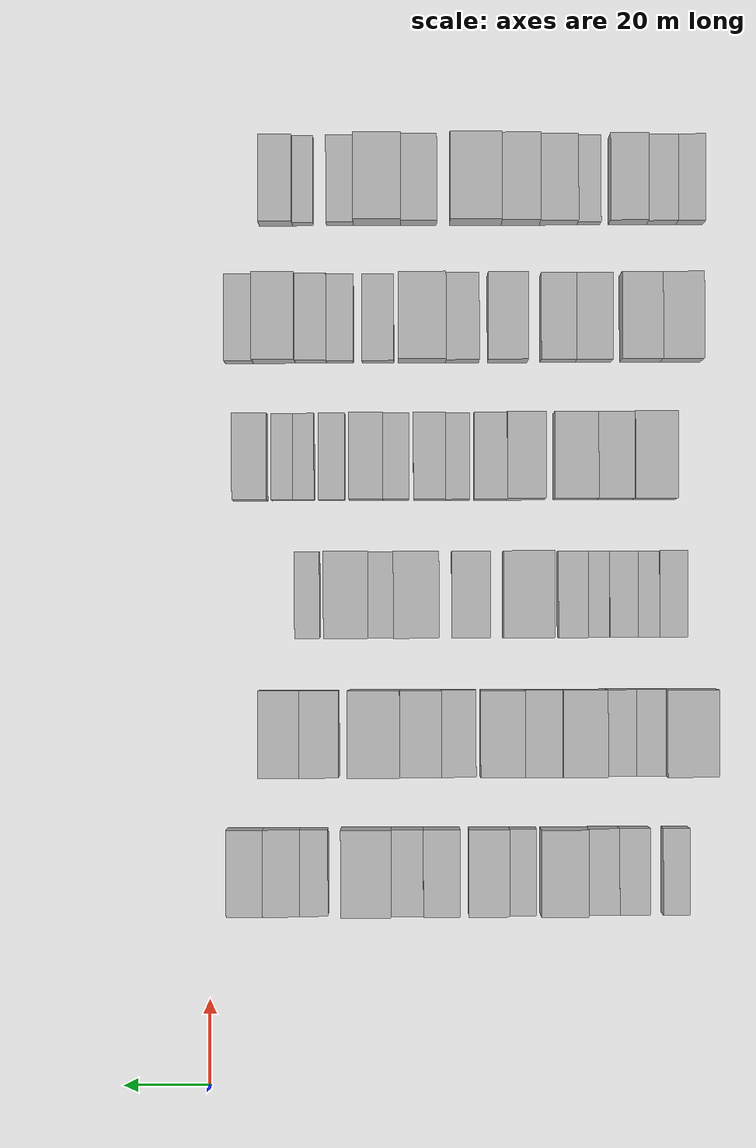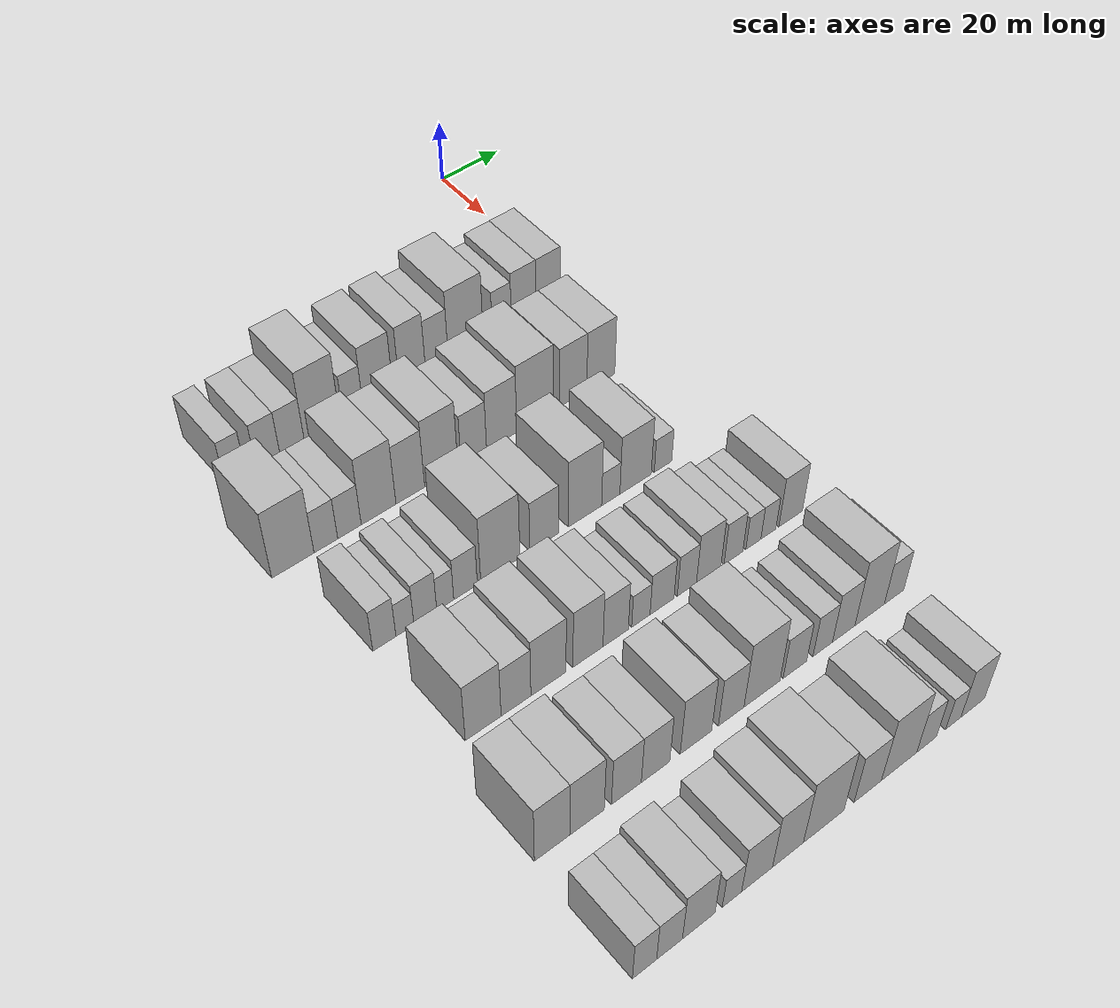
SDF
<sdf version="1.6">
 <world name="default">
  <model name="building_46">
   <static>1</static>
   <pose>50.0000 -108.0022 0 0.000000 0.000000 0.000000</pose>
   <link name="link">
    <pose>0 0 7.50 0 0 0</pose>
    <collision name="collision"><geometry><box><size>20.0000 6.1102 15.0000</size></box></geometry></collision>
    <visual name="visual">
     <cast_shadows>0</cast_shadows>
     <geometry><box><size>20.0000 6.1102 15.0000</size></box></geometry>
     <material>
      <script>
       <uri>model://HANNAS_wall/materials/scripts</uri>
       <uri>model://HANNAS_wall/materials/textures</uri>
       <name>vrc/HANNAS_wall</name>
      </script>
     </material>
    </visual>
   </link>
  </model>
  <model name="building_47">
   <static>1</static>
   <pose>50.0000 -98.4298 0 0.000000 0.000000 0.000000</pose>
   <link name="link">
    <pose>0 0 7.50 0 0 0</pose>
    <collision name="collision"><geometry><box><size>20.0000 7.0346 15.0000</size></box></geometry></collision>
    <visual name="visual">
     <cast_shadows>0</cast_shadows>
     <geometry><box><size>20.0000 7.0346 15.0000</size></box></geometry>
     <material>
      <script>
       <uri>model://HANNAS_wall/materials/scripts</uri>
       <uri>model://HANNAS_wall/materials/textures</uri>
       <name>vrc/HANNAS_wall</name>
      </script>
     </material>
    </visual>
   </link>
  </model>
  <model name="building_48">
   <static>1</static>
   <pose>50.0000 -91.2666 0 0.000000 0.000000 0.000000</pose>
   <link name="link">
    <pose>0 0 7.50 0 0 0</pose>
    <collision name="collision"><geometry><box><size>20.0000 7.2917 15.0000</size></box></geometry></collision>
    <visual name="visual">
     <cast_shadows>0</cast_shadows>
     <geometry><box><size>20.0000 7.2917 15.0000</size></box></geometry>
     <material>
      <script>
       <uri>model://HANNAS_wall/materials/scripts</uri>
       <uri>model://HANNAS_wall/materials/textures</uri>
       <name>vrc/HANNAS_wall</name>
      </script>
     </material>
    </visual>
   </link>
  </model>
  <model name="building_49">
   <static>1</static>
   <pose>50.0000 -82.1670 0 0.000000 0.000000 0.000000</pose>
   <link name="link">
    <pose>0 0 12.00 0 0 0</pose>
    <collision name="collision"><geometry><box><size>20.0000 10.9074 24.0000</size></box></geometry></collision>
    <visual name="visual">
     <cast_shadows>0</cast_shadows>
     <geometry><box><size>20.0000 10.9074 24.0000</size></box></geometry>
     <material>
      <script>
       <uri>model://HANNAS_wall/materials/scripts</uri>
       <uri>model://HANNAS_wall/materials/textures</uri>
       <name>vrc/HANNAS_wall</name>
      </script>
     </material>
    </visual>
   </link>
  </model>
  <model name="building_50">
   <static>1</static>
   <pose>50.0000 -72.6350 0 0.000000 0.000000 0.000000</pose>
   <link name="link">
    <pose>0 0 7.50 0 0 0</pose>
    <collision name="collision"><geometry><box><size>20.0000 6.1566 15.0000</size></box></geometry></collision>
    <visual name="visual">
     <cast_shadows>0</cast_shadows>
     <geometry><box><size>20.0000 6.1566 15.0000</size></box></geometry>
     <material>
      <script>
       <uri>model://HANNAS_wall/materials/scripts</uri>
       <uri>model://HANNAS_wall/materials/textures</uri>
       <name>vrc/HANNAS_wall</name>
      </script>
     </material>
    </visual>
   </link>
  </model>
  <model name="building_51">
   <static>1</static>
   <pose>50.0000 -64.8374 0 0.000000 0.000000 0.000000</pose>
   <link name="link">
    <pose>0 0 10.50 0 0 0</pose>
    <collision name="collision"><geometry><box><size>20.0000 9.4385 21.0000</size></box></geometry></collision>
    <visual name="visual">
     <cast_shadows>0</cast_shadows>
     <geometry><box><size>20.0000 9.4385 21.0000</size></box></geometry>
     <material>
      <script>
       <uri>model://HANNAS_wall/materials/scripts</uri>
       <uri>model://HANNAS_wall/materials/textures</uri>
       <name>vrc/HANNAS_wall</name>
      </script>
     </material>
    </visual>
   </link>
  </model>
  <model name="building_52">
   <static>1</static>
   <pose>50.0000 -53.8887 0 0.000000 0.000000 0.000000</pose>
   <link name="link">
    <pose>0 0 10.50 0 0 0</pose>
    <collision name="collision"><geometry><box><size>20.0000 8.4590 21.0000</size></box></geometry></collision>
    <visual name="visual">
     <cast_shadows>0</cast_shadows>
     <geometry><box><size>20.0000 8.4590 21.0000</size></box></geometry>
     <material>
      <script>
       <uri>model://HANNAS_wall/materials/scripts</uri>
       <uri>model://HANNAS_wall/materials/textures</uri>
       <name>vrc/HANNAS_wall</name>
      </script>
     </material>
    </visual>
   </link>
  </model>
  <model name="building_53">
   <static>1</static>
   <pose>50.0000 -45.9639 0 0.000000 0.000000 0.000000</pose>
   <link name="link">
    <pose>0 0 9.00 0 0 0</pose>
    <collision name="collision"><geometry><box><size>20.0000 7.3907 18.0000</size></box></geometry></collision>
    <visual name="visual">
     <cast_shadows>0</cast_shadows>
     <geometry><box><size>20.0000 7.3907 18.0000</size></box></geometry>
     <material>
      <script>
       <uri>model://HANNAS_wall/materials/scripts</uri>
       <uri>model://HANNAS_wall/materials/textures</uri>
       <name>vrc/HANNAS_wall</name>
      </script>
     </material>
    </visual>
   </link>
  </model>
  <model name="building_54">
   <static>1</static>
   <pose>50.0000 -36.4717 0 0.000000 0.000000 0.000000</pose>
   <link name="link">
    <pose>0 0 12.00 0 0 0</pose>
    <collision name="collision"><geometry><box><size>20.0000 11.5937 24.0000</size></box></geometry></collision>
    <visual name="visual">
     <cast_shadows>0</cast_shadows>
     <geometry><box><size>20.0000 11.5937 24.0000</size></box></geometry>
     <material>
      <script>
       <uri>model://HANNAS_wall/materials/scripts</uri>
       <uri>model://HANNAS_wall/materials/textures</uri>
       <name>vrc/HANNAS_wall</name>
      </script>
     </material>
    </visual>
   </link>
  </model>
  <model name="building_55">
   <static>1</static>
   <pose>50.0000 -24.4267 0 0.000000 0.000000 0.000000</pose>
   <link name="link">
    <pose>0 0 7.50 0 0 0</pose>
    <collision name="collision"><geometry><box><size>20.0000 6.4962 15.0000</size></box></geometry></collision>
    <visual name="visual">
     <cast_shadows>0</cast_shadows>
     <geometry><box><size>20.0000 6.4962 15.0000</size></box></geometry>
     <material>
      <script>
       <uri>model://HANNAS_wall/materials/scripts</uri>
       <uri>model://HANNAS_wall/materials/textures</uri>
       <name>vrc/HANNAS_wall</name>
      </script>
     </material>
    </visual>
   </link>
  </model>
  <model name="building_56">
   <static>1</static>
   <pose>50.0000 -16.9407 0 0.000000 0.000000 0.000000</pose>
   <link name="link">
    <pose>0 0 9.00 0 0 0</pose>
    <collision name="collision"><geometry><box><size>20.0000 8.4759 18.0000</size></box></geometry></collision>
    <visual name="visual">
     <cast_shadows>0</cast_shadows>
     <geometry><box><size>20.0000 8.4759 18.0000</size></box></geometry>
     <material>
      <script>
       <uri>model://HANNAS_wall/materials/scripts</uri>
       <uri>model://HANNAS_wall/materials/textures</uri>
       <name>vrc/HANNAS_wall</name>
      </script>
     </material>
    </visual>
   </link>
  </model>
  <model name="building_57">
   <static>1</static>
   <pose>50.0000 -8.5096 0 0.000000 0.000000 0.000000</pose>
   <link name="link">
    <pose>0 0 9.00 0 0 0</pose>
    <collision name="collision"><geometry><box><size>20.0000 8.3861 18.0000</size></box></geometry></collision>
    <visual name="visual">
     <cast_shadows>0</cast_shadows>
     <geometry><box><size>20.0000 8.3861 18.0000</size></box></geometry>
     <material>
      <script>
       <uri>model://HANNAS_wall/materials/scripts</uri>
       <uri>model://HANNAS_wall/materials/textures</uri>
       <name>vrc/HANNAS_wall</name>
      </script>
     </material>
    </visual>
   </link>
  </model>
  <model name="building_167">
   <static>1</static>
   <pose>82.0000 -111.6366 0 0.000000 0.000000 0.000000</pose>
   <link name="link">
    <pose>0 0 12.00 0 0 0</pose>
    <collision name="collision"><geometry><box><size>20.0000 11.8998 24.0000</size></box></geometry></collision>
    <visual name="visual">
     <cast_shadows>0</cast_shadows>
     <geometry><box><size>20.0000 11.8998 24.0000</size></box></geometry>
     <material>
      <script>
       <uri>model://HANNAS_wall/materials/scripts</uri>
       <uri>model://HANNAS_wall/materials/textures</uri>
       <name>vrc/HANNAS_wall</name>
      </script>
     </material>
    </visual>
   </link>
  </model>
  <model name="building_168">
   <static>1</static>
   <pose>82.0000 -102.2812 0 0.000000 0.000000 0.000000</pose>
   <link name="link">
    <pose>0 0 7.50 0 0 0</pose>
    <collision name="collision"><geometry><box><size>20.0000 6.8108 15.0000</size></box></geometry></collision>
    <visual name="visual">
     <cast_shadows>0</cast_shadows>
     <geometry><box><size>20.0000 6.8108 15.0000</size></box></geometry>
     <material>
      <script>
       <uri>model://HANNAS_wall/materials/scripts</uri>
       <uri>model://HANNAS_wall/materials/textures</uri>
       <name>vrc/HANNAS_wall</name>
      </script>
     </material>
    </visual>
   </link>
  </model>
  <model name="building_169">
   <static>1</static>
   <pose>82.0000 -95.4636 0 0.000000 0.000000 0.000000</pose>
   <link name="link">
    <pose>0 0 7.50 0 0 0</pose>
    <collision name="collision"><geometry><box><size>20.0000 6.8244 15.0000</size></box></geometry></collision>
    <visual name="visual">
     <cast_shadows>0</cast_shadows>
     <geometry><box><size>20.0000 6.8244 15.0000</size></box></geometry>
     <material>
      <script>
       <uri>model://HANNAS_wall/materials/scripts</uri>
       <uri>model://HANNAS_wall/materials/textures</uri>
       <name>vrc/HANNAS_wall</name>
      </script>
     </material>
    </visual>
   </link>
  </model>
  <model name="building_170">
   <static>1</static>
   <pose>82.0000 -86.9094 0 0.000000 0.000000 0.000000</pose>
   <link name="link">
    <pose>0 0 12.00 0 0 0</pose>
    <collision name="collision"><geometry><box><size>20.0000 10.2842 24.0000</size></box></geometry></collision>
    <visual name="visual">
     <cast_shadows>0</cast_shadows>
     <geometry><box><size>20.0000 10.2842 24.0000</size></box></geometry>
     <material>
      <script>
       <uri>model://HANNAS_wall/materials/scripts</uri>
       <uri>model://HANNAS_wall/materials/textures</uri>
       <name>vrc/HANNAS_wall</name>
      </script>
     </material>
    </visual>
   </link>
  </model>
  <model name="building_171">
   <static>1</static>
   <pose>82.0000 -77.4277 0 0.000000 0.000000 0.000000</pose>
   <link name="link">
    <pose>0 0 10.50 0 0 0</pose>
    <collision name="collision"><geometry><box><size>20.0000 8.6792 21.0000</size></box></geometry></collision>
    <visual name="visual">
     <cast_shadows>0</cast_shadows>
     <geometry><box><size>20.0000 8.6792 21.0000</size></box></geometry>
     <material>
      <script>
       <uri>model://HANNAS_wall/materials/scripts</uri>
       <uri>model://HANNAS_wall/materials/textures</uri>
       <name>vrc/HANNAS_wall</name>
      </script>
     </material>
    </visual>
   </link>
  </model>
  <model name="building_172">
   <static>1</static>
   <pose>82.0000 -67.9847 0 0.000000 0.000000 0.000000</pose>
   <link name="link">
    <pose>0 0 12.00 0 0 0</pose>
    <collision name="collision"><geometry><box><size>20.0000 10.2068 24.0000</size></box></geometry></collision>
    <visual name="visual">
     <cast_shadows>0</cast_shadows>
     <geometry><box><size>20.0000 10.2068 24.0000</size></box></geometry>
     <material>
      <script>
       <uri>model://HANNAS_wall/materials/scripts</uri>
       <uri>model://HANNAS_wall/materials/textures</uri>
       <name>vrc/HANNAS_wall</name>
      </script>
     </material>
    </visual>
   </link>
  </model>
  <model name="building_173">
   <static>1</static>
   <pose>82.0000 -57.8930 0 0.000000 0.000000 0.000000</pose>
   <link name="link">
    <pose>0 0 9.00 0 0 0</pose>
    <collision name="collision"><geometry><box><size>20.0000 7.9767 18.0000</size></box></geometry></collision>
    <visual name="visual">
     <cast_shadows>0</cast_shadows>
     <geometry><box><size>20.0000 7.9767 18.0000</size></box></geometry>
     <material>
      <script>
       <uri>model://HANNAS_wall/materials/scripts</uri>
       <uri>model://HANNAS_wall/materials/textures</uri>
       <name>vrc/HANNAS_wall</name>
      </script>
     </material>
    </visual>
   </link>
  </model>
  <model name="building_174">
   <static>1</static>
   <pose>82.0000 -49.0918 0 0.000000 0.000000 0.000000</pose>
   <link name="link">
    <pose>0 0 10.50 0 0 0</pose>
    <collision name="collision"><geometry><box><size>20.0000 9.6255 21.0000</size></box></geometry></collision>
    <visual name="visual">
     <cast_shadows>0</cast_shadows>
     <geometry><box><size>20.0000 9.6255 21.0000</size></box></geometry>
     <material>
      <script>
       <uri>model://HANNAS_wall/materials/scripts</uri>
       <uri>model://HANNAS_wall/materials/textures</uri>
       <name>vrc/HANNAS_wall</name>
      </script>
     </material>
    </visual>
   </link>
  </model>
  <model name="building_175">
   <static>1</static>
   <pose>82.0000 -38.2819 0 0.000000 0.000000 0.000000</pose>
   <link name="link">
    <pose>0 0 12.00 0 0 0</pose>
    <collision name="collision"><geometry><box><size>20.0000 11.9944 24.0000</size></box></geometry></collision>
    <visual name="visual">
     <cast_shadows>0</cast_shadows>
     <geometry><box><size>20.0000 11.9944 24.0000</size></box></geometry>
     <material>
      <script>
       <uri>model://HANNAS_wall/materials/scripts</uri>
       <uri>model://HANNAS_wall/materials/textures</uri>
       <name>vrc/HANNAS_wall</name>
      </script>
     </material>
    </visual>
   </link>
  </model>
  <model name="building_176">
   <static>1</static>
   <pose>82.0000 -25.7535 0 0.000000 0.000000 0.000000</pose>
   <link name="link">
    <pose>0 0 10.50 0 0 0</pose>
    <collision name="collision"><geometry><box><size>20.0000 9.0624 21.0000</size></box></geometry></collision>
    <visual name="visual">
     <cast_shadows>0</cast_shadows>
     <geometry><box><size>20.0000 9.0624 21.0000</size></box></geometry>
     <material>
      <script>
       <uri>model://HANNAS_wall/materials/scripts</uri>
       <uri>model://HANNAS_wall/materials/textures</uri>
       <name>vrc/HANNAS_wall</name>
      </script>
     </material>
    </visual>
   </link>
  </model>
  <model name="building_177">
   <static>1</static>
   <pose>82.0000 -16.4887 0 0.000000 0.000000 0.000000</pose>
   <link name="link">
    <pose>0 0 10.50 0 0 0</pose>
    <collision name="collision"><geometry><box><size>20.0000 9.4673 21.0000</size></box></geometry></collision>
    <visual name="visual">
     <cast_shadows>0</cast_shadows>
     <geometry><box><size>20.0000 9.4673 21.0000</size></box></geometry>
     <material>
      <script>
       <uri>model://HANNAS_wall/materials/scripts</uri>
       <uri>model://HANNAS_wall/materials/textures</uri>
       <name>vrc/HANNAS_wall</name>
      </script>
     </material>
    </visual>
   </link>
  </model>
  <model name="building_286">
   <static>1</static>
   <pose>114.0000 -107.6057 0 0.000000 0.000000 0.000000</pose>
   <link name="link">
    <pose>0 0 7.50 0 0 0</pose>
    <collision name="collision"><geometry><box><size>20.0000 6.4363 15.0000</size></box></geometry></collision>
    <visual name="visual">
     <cast_shadows>0</cast_shadows>
     <geometry><box><size>20.0000 6.4363 15.0000</size></box></geometry>
     <material>
      <script>
       <uri>model://HANNAS_wall/materials/scripts</uri>
       <uri>model://HANNAS_wall/materials/textures</uri>
       <name>vrc/HANNAS_wall</name>
      </script>
     </material>
    </visual>
   </link>
  </model>
  <model name="building_287">
   <static>1</static>
   <pose>114.0000 -101.8410 0 0.000000 0.000000 0.000000</pose>
   <link name="link">
    <pose>0 0 6.00 0 0 0</pose>
    <collision name="collision"><geometry><box><size>20.0000 5.0933 12.0000</size></box></geometry></collision>
    <visual name="visual">
     <cast_shadows>0</cast_shadows>
     <geometry><box><size>20.0000 5.0933 12.0000</size></box></geometry>
     <material>
      <script>
       <uri>model://HANNAS_wall/materials/scripts</uri>
       <uri>model://HANNAS_wall/materials/textures</uri>
       <name>vrc/HANNAS_wall</name>
      </script>
     </material>
    </visual>
   </link>
  </model>
  <model name="building_288">
   <static>1</static>
   <pose>114.0000 -96.0455 0 0.000000 0.000000 0.000000</pose>
   <link name="link">
    <pose>0 0 7.50 0 0 0</pose>
    <collision name="collision"><geometry><box><size>20.0000 6.4976 15.0000</size></box></geometry></collision>
    <visual name="visual">
     <cast_shadows>0</cast_shadows>
     <geometry><box><size>20.0000 6.4976 15.0000</size></box></geometry>
     <material>
      <script>
       <uri>model://HANNAS_wall/materials/scripts</uri>
       <uri>model://HANNAS_wall/materials/textures</uri>
       <name>vrc/HANNAS_wall</name>
      </script>
     </material>
    </visual>
   </link>
  </model>
  <model name="building_289">
   <static>1</static>
   <pose>114.0000 -90.3392 0 0.000000 0.000000 0.000000</pose>
   <link name="link">
    <pose>0 0 6.00 0 0 0</pose>
    <collision name="collision"><geometry><box><size>20.0000 4.9150 12.0000</size></box></geometry></collision>
    <visual name="visual">
     <cast_shadows>0</cast_shadows>
     <geometry><box><size>20.0000 4.9150 12.0000</size></box></geometry>
     <material>
      <script>
       <uri>model://HANNAS_wall/materials/scripts</uri>
       <uri>model://HANNAS_wall/materials/textures</uri>
       <name>vrc/HANNAS_wall</name>
      </script>
     </material>
    </visual>
   </link>
  </model>
  <model name="building_290">
   <static>1</static>
   <pose>114.0000 -84.4362 0 0.000000 0.000000 0.000000</pose>
   <link name="link">
    <pose>0 0 7.50 0 0 0</pose>
    <collision name="collision"><geometry><box><size>20.0000 6.8911 15.0000</size></box></geometry></collision>
    <visual name="visual">
     <cast_shadows>0</cast_shadows>
     <geometry><box><size>20.0000 6.8911 15.0000</size></box></geometry>
     <material>
      <script>
       <uri>model://HANNAS_wall/materials/scripts</uri>
       <uri>model://HANNAS_wall/materials/textures</uri>
       <name>vrc/HANNAS_wall</name>
      </script>
     </material>
    </visual>
   </link>
  </model>
  <model name="building_291">
   <static>1</static>
   <pose>114.0000 -74.1368 0 0.000000 0.000000 0.000000</pose>
   <link name="link">
    <pose>0 0 12.00 0 0 0</pose>
    <collision name="collision"><geometry><box><size>20.0000 11.7077 24.0000</size></box></geometry></collision>
    <visual name="visual">
     <cast_shadows>0</cast_shadows>
     <geometry><box><size>20.0000 11.7077 24.0000</size></box></geometry>
     <material>
      <script>
       <uri>model://HANNAS_wall/materials/scripts</uri>
       <uri>model://HANNAS_wall/materials/textures</uri>
       <name>vrc/HANNAS_wall</name>
      </script>
     </material>
    </visual>
   </link>
  </model>
  <model name="building_292">
   <static>1</static>
   <pose>114.0000 -60.8588 0 0.000000 0.000000 0.000000</pose>
   <link name="link">
    <pose>0 0 9.00 0 0 0</pose>
    <collision name="collision"><geometry><box><size>20.0000 8.8482 18.0000</size></box></geometry></collision>
    <visual name="visual">
     <cast_shadows>0</cast_shadows>
     <geometry><box><size>20.0000 8.8482 18.0000</size></box></geometry>
     <material>
      <script>
       <uri>model://HANNAS_wall/materials/scripts</uri>
       <uri>model://HANNAS_wall/materials/textures</uri>
       <name>vrc/HANNAS_wall</name>
      </script>
     </material>
    </visual>
   </link>
  </model>
  <model name="building_293">
   <static>1</static>
   <pose>114.0000 -48.1903 0 0.000000 0.000000 0.000000</pose>
   <link name="link">
    <pose>0 0 12.00 0 0 0</pose>
    <collision name="collision"><geometry><box><size>20.0000 10.4889 24.0000</size></box></geometry></collision>
    <visual name="visual">
     <cast_shadows>0</cast_shadows>
     <geometry><box><size>20.0000 10.4889 24.0000</size></box></geometry>
     <material>
      <script>
       <uri>model://HANNAS_wall/materials/scripts</uri>
       <uri>model://HANNAS_wall/materials/textures</uri>
       <name>vrc/HANNAS_wall</name>
      </script>
     </material>
    </visual>
   </link>
  </model>
  <model name="building_294">
   <static>1</static>
   <pose>114.0000 -40.0156 0 0.000000 0.000000 0.000000</pose>
   <link name="link">
    <pose>0 0 6.00 0 0 0</pose>
    <collision name="collision"><geometry><box><size>20.0000 5.8604 12.0000</size></box></geometry></collision>
    <visual name="visual">
     <cast_shadows>0</cast_shadows>
     <geometry><box><size>20.0000 5.8604 12.0000</size></box></geometry>
     <material>
      <script>
       <uri>model://HANNAS_wall/materials/scripts</uri>
       <uri>model://HANNAS_wall/materials/textures</uri>
       <name>vrc/HANNAS_wall</name>
      </script>
     </material>
    </visual>
   </link>
  </model>
  <model name="building_295">
   <static>1</static>
   <pose>114.0000 -31.9829 0 0.000000 0.000000 0.000000</pose>
   <link name="link">
    <pose>0 0 10.50 0 0 0</pose>
    <collision name="collision"><geometry><box><size>20.0000 10.2049 21.0000</size></box></geometry></collision>
    <visual name="visual">
     <cast_shadows>0</cast_shadows>
     <geometry><box><size>20.0000 10.2049 21.0000</size></box></geometry>
     <material>
      <script>
       <uri>model://HANNAS_wall/materials/scripts</uri>
       <uri>model://HANNAS_wall/materials/textures</uri>
       <name>vrc/HANNAS_wall</name>
      </script>
     </material>
    </visual>
   </link>
  </model>
  <model name="building_296">
   <static>1</static>
   <pose>114.0000 -22.9929 0 0.000000 0.000000 0.000000</pose>
   <link name="link">
    <pose>0 0 6.00 0 0 0</pose>
    <collision name="collision"><geometry><box><size>20.0000 5.7751 12.0000</size></box></geometry></collision>
    <visual name="visual">
     <cast_shadows>0</cast_shadows>
     <geometry><box><size>20.0000 5.7751 12.0000</size></box></geometry>
     <material>
      <script>
       <uri>model://HANNAS_wall/materials/scripts</uri>
       <uri>model://HANNAS_wall/materials/textures</uri>
       <name>vrc/HANNAS_wall</name>
      </script>
     </material>
    </visual>
   </link>
  </model>
  <model name="building_402">
   <static>1</static>
   <pose>146.0000 -103.5425 0 0.000000 0.000000 0.000000</pose>
   <link name="link">
    <pose>0 0 10.50 0 0 0</pose>
    <collision name="collision"><geometry><box><size>20.0000 9.8939 21.0000</size></box></geometry></collision>
    <visual name="visual">
     <cast_shadows>0</cast_shadows>
     <geometry><box><size>20.0000 9.8939 21.0000</size></box></geometry>
     <material>
      <script>
       <uri>model://HANNAS_wall/materials/scripts</uri>
       <uri>model://HANNAS_wall/materials/textures</uri>
       <name>vrc/HANNAS_wall</name>
      </script>
     </material>
    </visual>
   </link>
  </model>
  <model name="building_403">
   <static>1</static>
   <pose>146.0000 -94.3997 0 0.000000 0.000000 0.000000</pose>
   <link name="link">
    <pose>0 0 9.00 0 0 0</pose>
    <collision name="collision"><geometry><box><size>20.0000 8.3918 18.0000</size></box></geometry></collision>
    <visual name="visual">
     <cast_shadows>0</cast_shadows>
     <geometry><box><size>20.0000 8.3918 18.0000</size></box></geometry>
     <material>
      <script>
       <uri>model://HANNAS_wall/materials/scripts</uri>
       <uri>model://HANNAS_wall/materials/textures</uri>
       <name>vrc/HANNAS_wall</name>
      </script>
     </material>
    </visual>
   </link>
  </model>
  <model name="building_404">
   <static>1</static>
   <pose>146.0000 -85.1690 0 0.000000 0.000000 0.000000</pose>
   <link name="link">
    <pose>0 0 10.50 0 0 0</pose>
    <collision name="collision"><geometry><box><size>20.0000 10.0696 21.0000</size></box></geometry></collision>
    <visual name="visual">
     <cast_shadows>0</cast_shadows>
     <geometry><box><size>20.0000 10.0696 21.0000</size></box></geometry>
     <material>
      <script>
       <uri>model://HANNAS_wall/materials/scripts</uri>
       <uri>model://HANNAS_wall/materials/textures</uri>
       <name>vrc/HANNAS_wall</name>
      </script>
     </material>
    </visual>
   </link>
  </model>
  <model name="building_405">
   <static>1</static>
   <pose>146.0000 -73.6948 0 0.000000 0.000000 0.000000</pose>
   <link name="link">
    <pose>0 0 10.50 0 0 0</pose>
    <collision name="collision"><geometry><box><size>20.0000 8.8788 21.0000</size></box></geometry></collision>
    <visual name="visual">
     <cast_shadows>0</cast_shadows>
     <geometry><box><size>20.0000 8.8788 21.0000</size></box></geometry>
     <material>
      <script>
       <uri>model://HANNAS_wall/materials/scripts</uri>
       <uri>model://HANNAS_wall/materials/textures</uri>
       <name>vrc/HANNAS_wall</name>
      </script>
     </material>
    </visual>
   </link>
  </model>
  <model name="building_406">
   <static>1</static>
   <pose>146.0000 -65.4591 0 0.000000 0.000000 0.000000</pose>
   <link name="link">
    <pose>0 0 9.00 0 0 0</pose>
    <collision name="collision"><geometry><box><size>20.0000 7.5925 18.0000</size></box></geometry></collision>
    <visual name="visual">
     <cast_shadows>0</cast_shadows>
     <geometry><box><size>20.0000 7.5925 18.0000</size></box></geometry>
     <material>
      <script>
       <uri>model://HANNAS_wall/materials/scripts</uri>
       <uri>model://HANNAS_wall/materials/textures</uri>
       <name>vrc/HANNAS_wall</name>
      </script>
     </material>
    </visual>
   </link>
  </model>
  <model name="building_407">
   <static>1</static>
   <pose>146.0000 -57.8556 0 0.000000 0.000000 0.000000</pose>
   <link name="link">
    <pose>0 0 6.00 0 0 0</pose>
    <collision name="collision"><geometry><box><size>20.0000 5.6147 12.0000</size></box></geometry></collision>
    <visual name="visual">
     <cast_shadows>0</cast_shadows>
     <geometry><box><size>20.0000 5.6147 12.0000</size></box></geometry>
     <material>
      <script>
       <uri>model://HANNAS_wall/materials/scripts</uri>
       <uri>model://HANNAS_wall/materials/textures</uri>
       <name>vrc/HANNAS_wall</name>
      </script>
     </material>
    </visual>
   </link>
  </model>
  <model name="building_408">
   <static>1</static>
   <pose>146.0000 -51.3477 0 0.000000 0.000000 0.000000</pose>
   <link name="link">
    <pose>0 0 7.50 0 0 0</pose>
    <collision name="collision"><geometry><box><size>20.0000 7.4011 15.0000</size></box></geometry></collision>
    <visual name="visual">
     <cast_shadows>0</cast_shadows>
     <geometry><box><size>20.0000 7.4011 15.0000</size></box></geometry>
     <material>
      <script>
       <uri>model://HANNAS_wall/materials/scripts</uri>
       <uri>model://HANNAS_wall/materials/textures</uri>
       <name>vrc/HANNAS_wall</name>
      </script>
     </material>
    </visual>
   </link>
  </model>
  <model name="building_409">
   <static>1</static>
   <pose>146.0000 -43.6262 0 0.000000 0.000000 0.000000</pose>
   <link name="link">
    <pose>0 0 7.50 0 0 0</pose>
    <collision name="collision"><geometry><box><size>20.0000 6.0419 15.0000</size></box></geometry></collision>
    <visual name="visual">
     <cast_shadows>0</cast_shadows>
     <geometry><box><size>20.0000 6.0419 15.0000</size></box></geometry>
     <material>
      <script>
       <uri>model://HANNAS_wall/materials/scripts</uri>
       <uri>model://HANNAS_wall/materials/textures</uri>
       <name>vrc/HANNAS_wall</name>
      </script>
     </material>
    </visual>
   </link>
  </model>
  <model name="building_410">
   <static>1</static>
   <pose>146.0000 -36.6966 0 0.000000 0.000000 0.000000</pose>
   <link name="link">
    <pose>0 0 9.00 0 0 0</pose>
    <collision name="collision"><geometry><box><size>20.0000 7.8173 18.0000</size></box></geometry></collision>
    <visual name="visual">
     <cast_shadows>0</cast_shadows>
     <geometry><box><size>20.0000 7.8173 18.0000</size></box></geometry>
     <material>
      <script>
       <uri>model://HANNAS_wall/materials/scripts</uri>
       <uri>model://HANNAS_wall/materials/textures</uri>
       <name>vrc/HANNAS_wall</name>
      </script>
     </material>
    </visual>
   </link>
  </model>
  <model name="building_411">
   <static>1</static>
   <pose>146.0000 -28.7443 0 0.000000 0.000000 0.000000</pose>
   <link name="link">
    <pose>0 0 7.50 0 0 0</pose>
    <collision name="collision"><geometry><box><size>20.0000 6.0872 15.0000</size></box></geometry></collision>
    <visual name="visual">
     <cast_shadows>0</cast_shadows>
     <geometry><box><size>20.0000 6.0872 15.0000</size></box></geometry>
     <material>
      <script>
       <uri>model://HANNAS_wall/materials/scripts</uri>
       <uri>model://HANNAS_wall/materials/textures</uri>
       <name>vrc/HANNAS_wall</name>
      </script>
     </material>
    </visual>
   </link>
  </model>
  <model name="building_412">
   <static>1</static>
   <pose>146.0000 -22.2342 0 0.000000 0.000000 0.000000</pose>
   <link name="link">
    <pose>0 0 6.00 0 0 0</pose>
    <collision name="collision"><geometry><box><size>20.0000 4.9331 12.0000</size></box></geometry></collision>
    <visual name="visual">
     <cast_shadows>0</cast_shadows>
     <geometry><box><size>20.0000 4.9331 12.0000</size></box></geometry>
     <material>
      <script>
       <uri>model://HANNAS_wall/materials/scripts</uri>
       <uri>model://HANNAS_wall/materials/textures</uri>
       <name>vrc/HANNAS_wall</name>
      </script>
     </material>
    </visual>
   </link>
  </model>
  <model name="building_413">
   <static>1</static>
   <pose>146.0000 -17.2901 0 0.000000 0.000000 0.000000</pose>
   <link name="link">
    <pose>0 0 6.00 0 0 0</pose>
    <collision name="collision"><geometry><box><size>20.0000 4.9551 12.0000</size></box></geometry></collision>
    <visual name="visual">
     <cast_shadows>0</cast_shadows>
     <geometry><box><size>20.0000 4.9551 12.0000</size></box></geometry>
     <material>
      <script>
       <uri>model://HANNAS_wall/materials/scripts</uri>
       <uri>model://HANNAS_wall/materials/textures</uri>
       <name>vrc/HANNAS_wall</name>
      </script>
     </material>
    </visual>
   </link>
  </model>
  <model name="building_414">
   <static>1</static>
   <pose>146.0000 -9.8416 0 0.000000 0.000000 0.000000</pose>
   <link name="link">
    <pose>0 0 9.00 0 0 0</pose>
    <collision name="collision"><geometry><box><size>20.0000 7.9417 18.0000</size></box></geometry></collision>
    <visual name="visual">
     <cast_shadows>0</cast_shadows>
     <geometry><box><size>20.0000 7.9417 18.0000</size></box></geometry>
     <material>
      <script>
       <uri>model://HANNAS_wall/materials/scripts</uri>
       <uri>model://HANNAS_wall/materials/textures</uri>
       <name>vrc/HANNAS_wall</name>
      </script>
     </material>
    </visual>
   </link>
  </model>
  <model name="building_523">
   <static>1</static>
   <pose>178.0000 -109.8180 0 0.000000 0.000000 0.000000</pose>
   <link name="link">
    <pose>0 0 10.50 0 0 0</pose>
    <collision name="collision"><geometry><box><size>20.0000 9.4437 21.0000</size></box></geometry></collision>
    <visual name="visual">
     <cast_shadows>0</cast_shadows>
     <geometry><box><size>20.0000 9.4437 21.0000</size></box></geometry>
     <material>
      <script>
       <uri>model://HANNAS_wall/materials/scripts</uri>
       <uri>model://HANNAS_wall/materials/textures</uri>
       <name>vrc/HANNAS_wall</name>
      </script>
     </material>
    </visual>
   </link>
  </model>
  <model name="building_524">
   <static>1</static>
   <pose>178.0000 -100.3850 0 0.000000 0.000000 0.000000</pose>
   <link name="link">
    <pose>0 0 10.50 0 0 0</pose>
    <collision name="collision"><geometry><box><size>20.0000 9.4222 21.0000</size></box></geometry></collision>
    <visual name="visual">
     <cast_shadows>0</cast_shadows>
     <geometry><box><size>20.0000 9.4222 21.0000</size></box></geometry>
     <material>
      <script>
       <uri>model://HANNAS_wall/materials/scripts</uri>
       <uri>model://HANNAS_wall/materials/textures</uri>
       <name>vrc/HANNAS_wall</name>
      </script>
     </material>
    </visual>
   </link>
  </model>
  <model name="building_525">
   <static>1</static>
   <pose>178.0000 -89.4948 0 0.000000 0.000000 0.000000</pose>
   <link name="link">
    <pose>0 0 9.00 0 0 0</pose>
    <collision name="collision"><geometry><box><size>20.0000 8.3583 18.0000</size></box></geometry></collision>
    <visual name="visual">
     <cast_shadows>0</cast_shadows>
     <geometry><box><size>20.0000 8.3583 18.0000</size></box></geometry>
     <material>
      <script>
       <uri>model://HANNAS_wall/materials/scripts</uri>
       <uri>model://HANNAS_wall/materials/textures</uri>
       <name>vrc/HANNAS_wall</name>
      </script>
     </material>
    </visual>
   </link>
  </model>
  <model name="building_526">
   <static>1</static>
   <pose>178.0000 -81.2458 0 0.000000 0.000000 0.000000</pose>
   <link name="link">
    <pose>0 0 9.00 0 0 0</pose>
    <collision name="collision"><geometry><box><size>20.0000 8.1398 18.0000</size></box></geometry></collision>
    <visual name="visual">
     <cast_shadows>0</cast_shadows>
     <geometry><box><size>20.0000 8.1398 18.0000</size></box></geometry>
     <material>
      <script>
       <uri>model://HANNAS_wall/materials/scripts</uri>
       <uri>model://HANNAS_wall/materials/textures</uri>
       <name>vrc/HANNAS_wall</name>
      </script>
     </material>
    </visual>
   </link>
  </model>
  <model name="building_527">
   <static>1</static>
   <pose>178.0000 -69.5526 0 0.000000 0.000000 0.000000</pose>
   <link name="link">
    <pose>0 0 10.50 0 0 0</pose>
    <collision name="collision"><geometry><box><size>20.0000 9.2466 21.0000</size></box></geometry></collision>
    <visual name="visual">
     <cast_shadows>0</cast_shadows>
     <geometry><box><size>20.0000 9.2466 21.0000</size></box></geometry>
     <material>
      <script>
       <uri>model://HANNAS_wall/materials/scripts</uri>
       <uri>model://HANNAS_wall/materials/textures</uri>
       <name>vrc/HANNAS_wall</name>
      </script>
     </material>
    </visual>
   </link>
  </model>
  <model name="building_528">
   <static>1</static>
   <pose>178.0000 -59.0841 0 0.000000 0.000000 0.000000</pose>
   <link name="link">
    <pose>0 0 9.00 0 0 0</pose>
    <collision name="collision"><geometry><box><size>20.0000 7.6904 18.0000</size></box></geometry></collision>
    <visual name="visual">
     <cast_shadows>0</cast_shadows>
     <geometry><box><size>20.0000 7.6904 18.0000</size></box></geometry>
     <material>
      <script>
       <uri>model://HANNAS_wall/materials/scripts</uri>
       <uri>model://HANNAS_wall/materials/textures</uri>
       <name>vrc/HANNAS_wall</name>
      </script>
     </material>
    </visual>
   </link>
  </model>
  <model name="building_529">
   <static>1</static>
   <pose>178.0000 -49.7363 0 0.000000 0.000000 0.000000</pose>
   <link name="link">
    <pose>0 0 12.00 0 0 0</pose>
    <collision name="collision"><geometry><box><size>20.0000 11.0052 24.0000</size></box></geometry></collision>
    <visual name="visual">
     <cast_shadows>0</cast_shadows>
     <geometry><box><size>20.0000 11.0052 24.0000</size></box></geometry>
     <material>
      <script>
       <uri>model://HANNAS_wall/materials/scripts</uri>
       <uri>model://HANNAS_wall/materials/textures</uri>
       <name>vrc/HANNAS_wall</name>
      </script>
     </material>
    </visual>
   </link>
  </model>
  <model name="building_530">
   <static>1</static>
   <pose>178.0000 -39.5459 0 0.000000 0.000000 0.000000</pose>
   <link name="link">
    <pose>0 0 7.50 0 0 0</pose>
    <collision name="collision"><geometry><box><size>20.0000 7.3756 15.0000</size></box></geometry></collision>
    <visual name="visual">
     <cast_shadows>0</cast_shadows>
     <geometry><box><size>20.0000 7.3756 15.0000</size></box></geometry>
     <material>
      <script>
       <uri>model://HANNAS_wall/materials/scripts</uri>
       <uri>model://HANNAS_wall/materials/textures</uri>
       <name>vrc/HANNAS_wall</name>
      </script>
     </material>
    </visual>
   </link>
  </model>
  <model name="building_531">
   <static>1</static>
   <pose>178.0000 -30.7378 0 0.000000 0.000000 0.000000</pose>
   <link name="link">
    <pose>0 0 7.50 0 0 0</pose>
    <collision name="collision"><geometry><box><size>20.0000 6.2407 15.0000</size></box></geometry></collision>
    <visual name="visual">
     <cast_shadows>0</cast_shadows>
     <geometry><box><size>20.0000 6.2407 15.0000</size></box></geometry>
     <material>
      <script>
       <uri>model://HANNAS_wall/materials/scripts</uri>
       <uri>model://HANNAS_wall/materials/textures</uri>
       <name>vrc/HANNAS_wall</name>
      </script>
     </material>
    </visual>
   </link>
  </model>
  <model name="building_532">
   <static>1</static>
   <pose>178.0000 -23.9743 0 0.000000 0.000000 0.000000</pose>
   <link name="link">
    <pose>0 0 9.00 0 0 0</pose>
    <collision name="collision"><geometry><box><size>20.0000 7.2863 18.0000</size></box></geometry></collision>
    <visual name="visual">
     <cast_shadows>0</cast_shadows>
     <geometry><box><size>20.0000 7.2863 18.0000</size></box></geometry>
     <material>
      <script>
       <uri>model://HANNAS_wall/materials/scripts</uri>
       <uri>model://HANNAS_wall/materials/textures</uri>
       <name>vrc/HANNAS_wall</name>
      </script>
     </material>
    </visual>
   </link>
  </model>
  <model name="building_533">
   <static>1</static>
   <pose>178.0000 -15.4589 0 0.000000 0.000000 0.000000</pose>
   <link name="link">
    <pose>0 0 12.00 0 0 0</pose>
    <collision name="collision"><geometry><box><size>20.0000 9.7444 24.0000</size></box></geometry></collision>
    <visual name="visual">
     <cast_shadows>0</cast_shadows>
     <geometry><box><size>20.0000 9.7444 24.0000</size></box></geometry>
     <material>
      <script>
       <uri>model://HANNAS_wall/materials/scripts</uri>
       <uri>model://HANNAS_wall/materials/textures</uri>
       <name>vrc/HANNAS_wall</name>
      </script>
     </material>
    </visual>
   </link>
  </model>
  <model name="building_534">
   <static>1</static>
   <pose>178.0000 -7.3222 0 0.000000 0.000000 0.000000</pose>
   <link name="link">
    <pose>0 0 7.50 0 0 0</pose>
    <collision name="collision"><geometry><box><size>20.0000 6.5291 15.0000</size></box></geometry></collision>
    <visual name="visual">
     <cast_shadows>0</cast_shadows>
     <geometry><box><size>20.0000 6.5291 15.0000</size></box></geometry>
     <material>
      <script>
       <uri>model://HANNAS_wall/materials/scripts</uri>
       <uri>model://HANNAS_wall/materials/textures</uri>
       <name>vrc/HANNAS_wall</name>
      </script>
     </material>
    </visual>
   </link>
  </model>
  <model name="building_637">
   <static>1</static>
   <pose>210.0000 -112.0546 0 0.000000 0.000000 0.000000</pose>
   <link name="link">
    <pose>0 0 7.50 0 0 0</pose>
    <collision name="collision"><geometry><box><size>20.0000 6.3225 15.0000</size></box></geometry></collision>
    <visual name="visual">
     <cast_shadows>0</cast_shadows>
     <geometry><box><size>20.0000 6.3225 15.0000</size></box></geometry>
     <material>
      <script>
       <uri>model://HANNAS_wall/materials/scripts</uri>
       <uri>model://HANNAS_wall/materials/textures</uri>
       <name>vrc/HANNAS_wall</name>
      </script>
     </material>
    </visual>
   </link>
  </model>
  <model name="building_638">
   <static>1</static>
   <pose>210.0000 -105.4628 0 0.000000 0.000000 0.000000</pose>
   <link name="link">
    <pose>0 0 7.50 0 0 0</pose>
    <collision name="collision"><geometry><box><size>20.0000 6.8612 15.0000</size></box></geometry></collision>
    <visual name="visual">
     <cast_shadows>0</cast_shadows>
     <geometry><box><size>20.0000 6.8612 15.0000</size></box></geometry>
     <material>
      <script>
       <uri>model://HANNAS_wall/materials/scripts</uri>
       <uri>model://HANNAS_wall/materials/textures</uri>
       <name>vrc/HANNAS_wall</name>
      </script>
     </material>
    </visual>
   </link>
  </model>
  <model name="building_639">
   <static>1</static>
   <pose>210.0000 -97.6173 0 0.000000 0.000000 0.000000</pose>
   <link name="link">
    <pose>0 0 9.00 0 0 0</pose>
    <collision name="collision"><geometry><box><size>20.0000 8.8298 18.0000</size></box></geometry></collision>
    <visual name="visual">
     <cast_shadows>0</cast_shadows>
     <geometry><box><size>20.0000 8.8298 18.0000</size></box></geometry>
     <material>
      <script>
       <uri>model://HANNAS_wall/materials/scripts</uri>
       <uri>model://HANNAS_wall/materials/textures</uri>
       <name>vrc/HANNAS_wall</name>
      </script>
     </material>
    </visual>
   </link>
  </model>
  <model name="building_640">
   <static>1</static>
   <pose>210.0000 -88.5271 0 0.000000 0.000000 0.000000</pose>
   <link name="link">
    <pose>0 0 6.00 0 0 0</pose>
    <collision name="collision"><geometry><box><size>20.0000 5.3505 12.0000</size></box></geometry></collision>
    <visual name="visual">
     <cast_shadows>0</cast_shadows>
     <geometry><box><size>20.0000 5.3505 12.0000</size></box></geometry>
     <material>
      <script>
       <uri>model://HANNAS_wall/materials/scripts</uri>
       <uri>model://HANNAS_wall/materials/textures</uri>
       <name>vrc/HANNAS_wall</name>
      </script>
     </material>
    </visual>
   </link>
  </model>
  <model name="building_641">
   <static>1</static>
   <pose>210.0000 -81.4918 0 0.000000 0.000000 0.000000</pose>
   <link name="link">
    <pose>0 0 9.00 0 0 0</pose>
    <collision name="collision"><geometry><box><size>20.0000 8.7201 18.0000</size></box></geometry></collision>
    <visual name="visual">
     <cast_shadows>0</cast_shadows>
     <geometry><box><size>20.0000 8.7201 18.0000</size></box></geometry>
     <material>
      <script>
       <uri>model://HANNAS_wall/materials/scripts</uri>
       <uri>model://HANNAS_wall/materials/textures</uri>
       <name>vrc/HANNAS_wall</name>
      </script>
     </material>
    </visual>
   </link>
  </model>
  <model name="building_642">
   <static>1</static>
   <pose>210.0000 -72.6789 0 0.000000 0.000000 0.000000</pose>
   <link name="link">
    <pose>0 0 10.50 0 0 0</pose>
    <collision name="collision"><geometry><box><size>20.0000 8.9057 21.0000</size></box></geometry></collision>
    <visual name="visual">
     <cast_shadows>0</cast_shadows>
     <geometry><box><size>20.0000 8.9057 21.0000</size></box></geometry>
     <material>
      <script>
       <uri>model://HANNAS_wall/materials/scripts</uri>
       <uri>model://HANNAS_wall/materials/textures</uri>
       <name>vrc/HANNAS_wall</name>
      </script>
     </material>
    </visual>
   </link>
  </model>
  <model name="building_643">
   <static>1</static>
   <pose>210.0000 -62.2293 0 0.000000 0.000000 0.000000</pose>
   <link name="link">
    <pose>0 0 12.00 0 0 0</pose>
    <collision name="collision"><geometry><box><size>20.0000 11.9933 24.0000</size></box></geometry></collision>
    <visual name="visual">
     <cast_shadows>0</cast_shadows>
     <geometry><box><size>20.0000 11.9933 24.0000</size></box></geometry>
     <material>
      <script>
       <uri>model://HANNAS_wall/materials/scripts</uri>
       <uri>model://HANNAS_wall/materials/textures</uri>
       <name>vrc/HANNAS_wall</name>
      </script>
     </material>
    </visual>
   </link>
  </model>
  <model name="building_644">
   <static>1</static>
   <pose>210.0000 -49.0777 0 0.000000 0.000000 0.000000</pose>
   <link name="link">
    <pose>0 0 9.00 0 0 0</pose>
    <collision name="collision"><geometry><box><size>20.0000 8.3100 18.0000</size></box></geometry></collision>
    <visual name="visual">
     <cast_shadows>0</cast_shadows>
     <geometry><box><size>20.0000 8.3100 18.0000</size></box></geometry>
     <material>
      <script>
       <uri>model://HANNAS_wall/materials/scripts</uri>
       <uri>model://HANNAS_wall/materials/textures</uri>
       <name>vrc/HANNAS_wall</name>
      </script>
     </material>
    </visual>
   </link>
  </model>
  <model name="building_645">
   <static>1</static>
   <pose>210.0000 -39.4089 0 0.000000 0.000000 0.000000</pose>
   <link name="link">
    <pose>0 0 12.00 0 0 0</pose>
    <collision name="collision"><geometry><box><size>20.0000 11.0275 24.0000</size></box></geometry></collision>
    <visual name="visual">
     <cast_shadows>0</cast_shadows>
     <geometry><box><size>20.0000 11.0275 24.0000</size></box></geometry>
     <material>
      <script>
       <uri>model://HANNAS_wall/materials/scripts</uri>
       <uri>model://HANNAS_wall/materials/textures</uri>
       <name>vrc/HANNAS_wall</name>
      </script>
     </material>
    </visual>
   </link>
  </model>
  <model name="building_646">
   <static>1</static>
   <pose>210.0000 -30.7786 0 0.000000 0.000000 0.000000</pose>
   <link name="link">
    <pose>0 0 7.50 0 0 0</pose>
    <collision name="collision"><geometry><box><size>20.0000 6.2332 15.0000</size></box></geometry></collision>
    <visual name="visual">
     <cast_shadows>0</cast_shadows>
     <geometry><box><size>20.0000 6.2332 15.0000</size></box></geometry>
     <material>
      <script>
       <uri>model://HANNAS_wall/materials/scripts</uri>
       <uri>model://HANNAS_wall/materials/textures</uri>
       <name>vrc/HANNAS_wall</name>
      </script>
     </material>
    </visual>
   </link>
  </model>
  <model name="building_647">
   <static>1</static>
   <pose>210.0000 -22.2097 0 0.000000 0.000000 0.000000</pose>
   <link name="link">
    <pose>0 0 6.00 0 0 0</pose>
    <collision name="collision"><geometry><box><size>20.0000 4.9045 12.0000</size></box></geometry></collision>
    <visual name="visual">
     <cast_shadows>0</cast_shadows>
     <geometry><box><size>20.0000 4.9045 12.0000</size></box></geometry>
     <material>
      <script>
       <uri>model://HANNAS_wall/materials/scripts</uri>
       <uri>model://HANNAS_wall/materials/textures</uri>
       <name>vrc/HANNAS_wall</name>
      </script>
     </material>
    </visual>
   </link>
  </model>
  <model name="building_648">
   <static>1</static>
   <pose>210.0000 -15.8903 0 0.000000 0.000000 0.000000</pose>
   <link name="link">
    <pose>0 0 9.00 0 0 0</pose>
    <collision name="collision"><geometry><box><size>20.0000 7.7343 18.0000</size></box></geometry></collision>
    <visual name="visual">
     <cast_shadows>0</cast_shadows>
     <geometry><box><size>20.0000 7.7343 18.0000</size></box></geometry>
     <material>
      <script>
       <uri>model://HANNAS_wall/materials/scripts</uri>
       <uri>model://HANNAS_wall/materials/textures</uri>
       <name>vrc/HANNAS_wall</name>
      </script>
     </material>
    </visual>
   </link>
  </model>
 </world>
</sdf>
